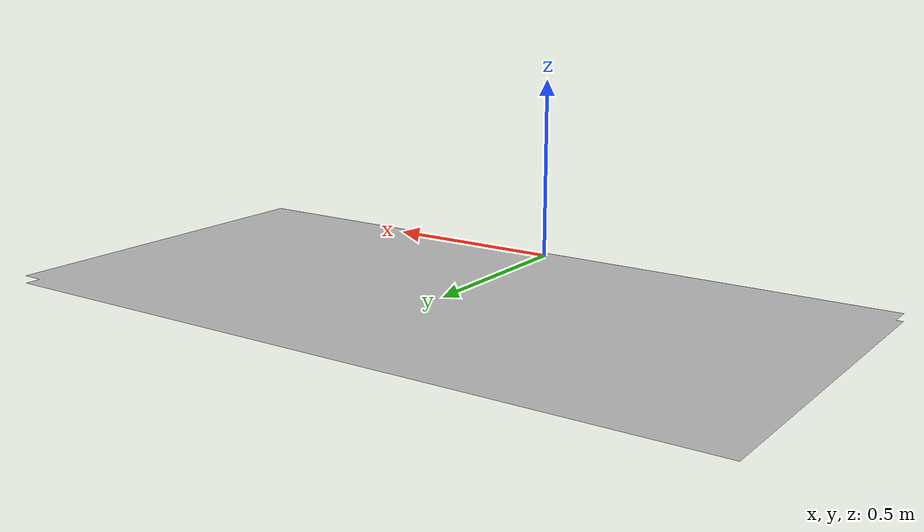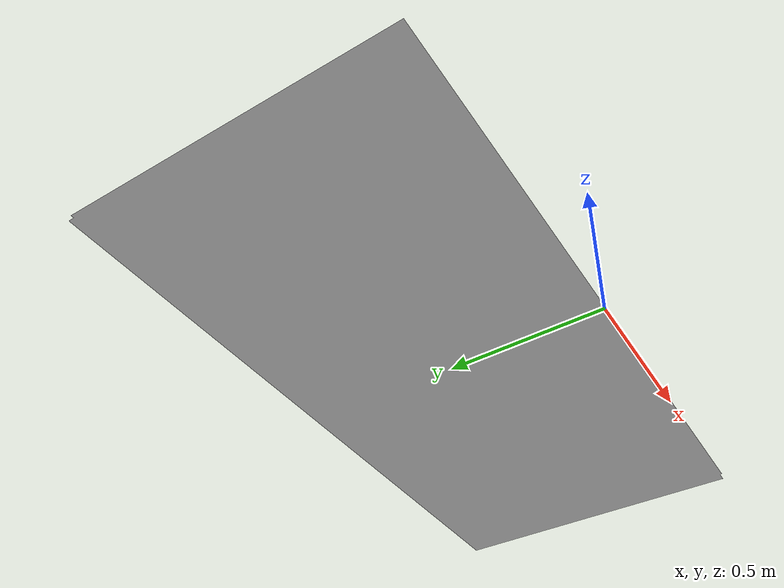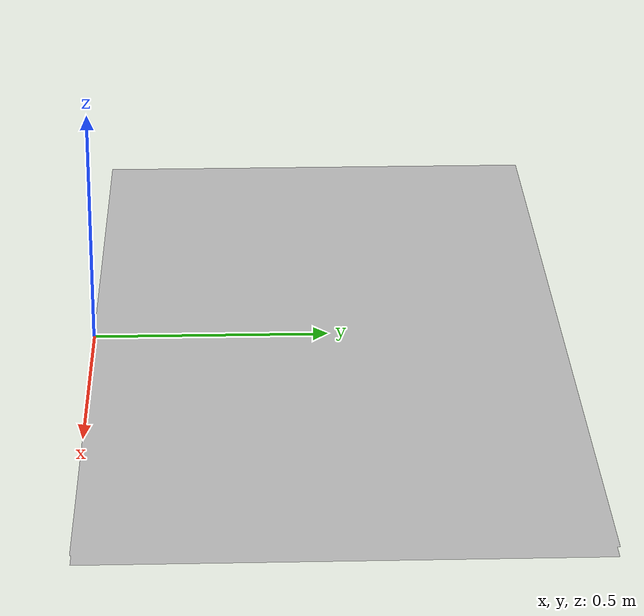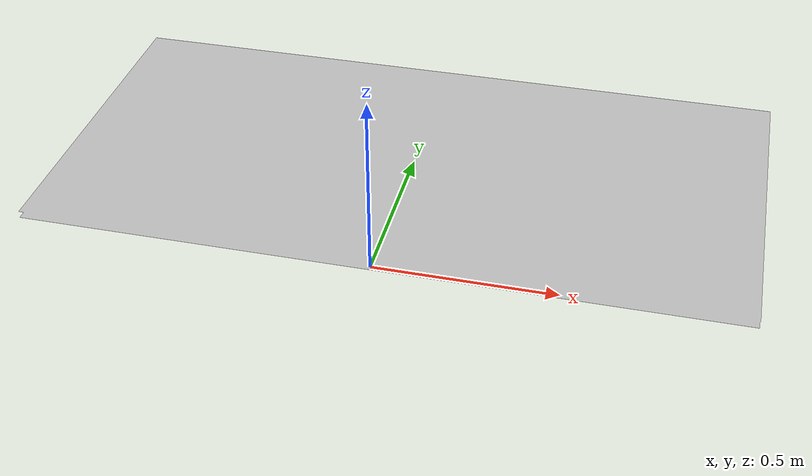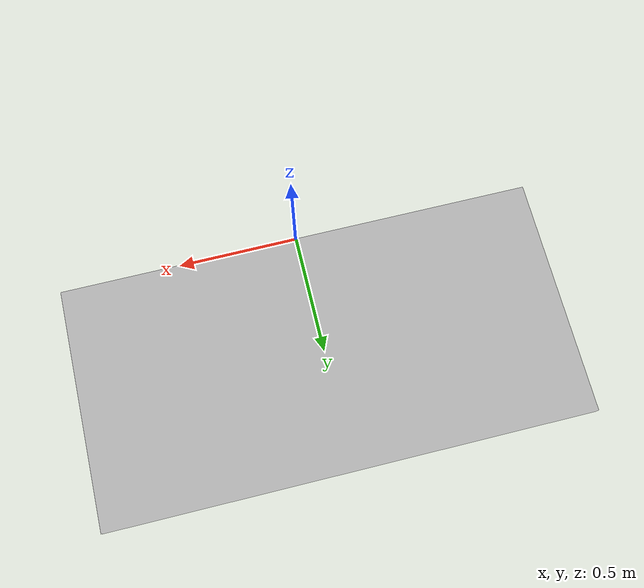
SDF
<?xml version="1.6" ?>
<sdf version="1.6">
  <model name="wall_1">
    <static>true</static>
    <link name="link">
      <visual name="visual">
        <geometry>
          <mesh>
            <uri>model://wall_1/meshes/wall_1.obj</uri>
          </mesh>
        </geometry>
      </visual>
      <collision name="collision">
        <geometry>
          <mesh>
            <uri>model://wall_1/meshes/wall_1.obj</uri>
          </mesh>
        </geometry>
      </collision>
    </link>
  </model>
</sdf>
